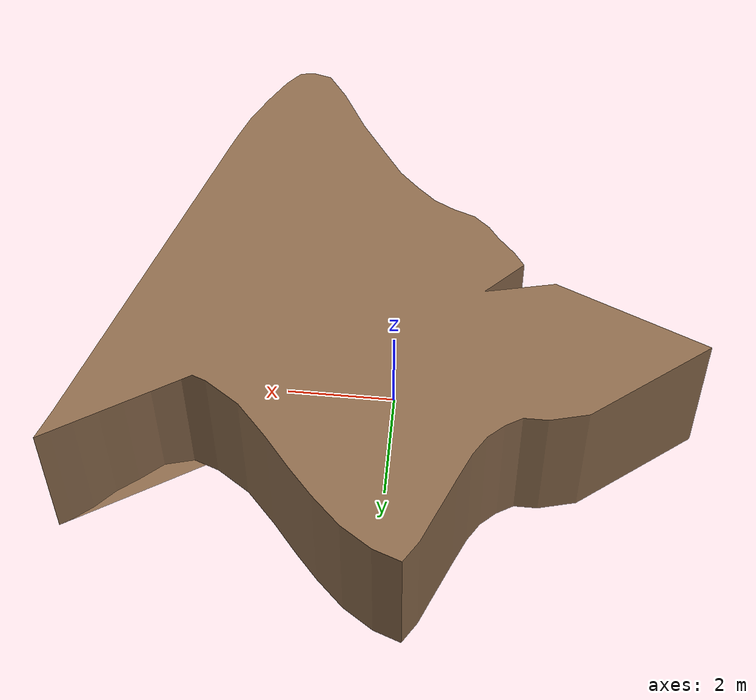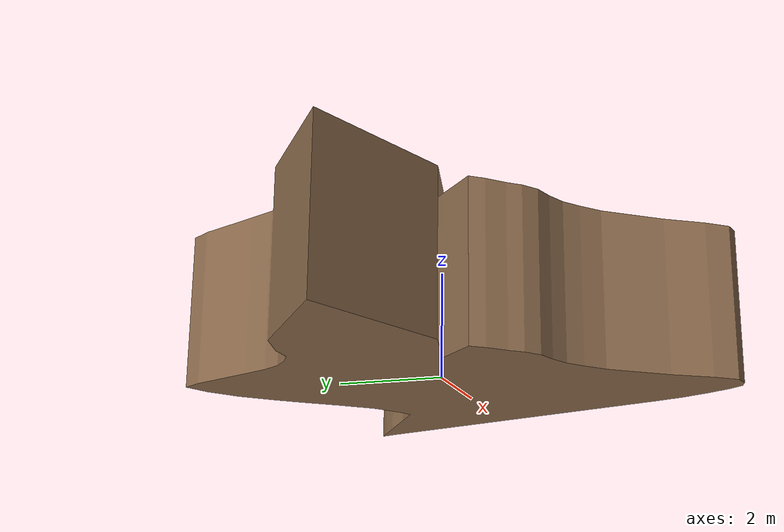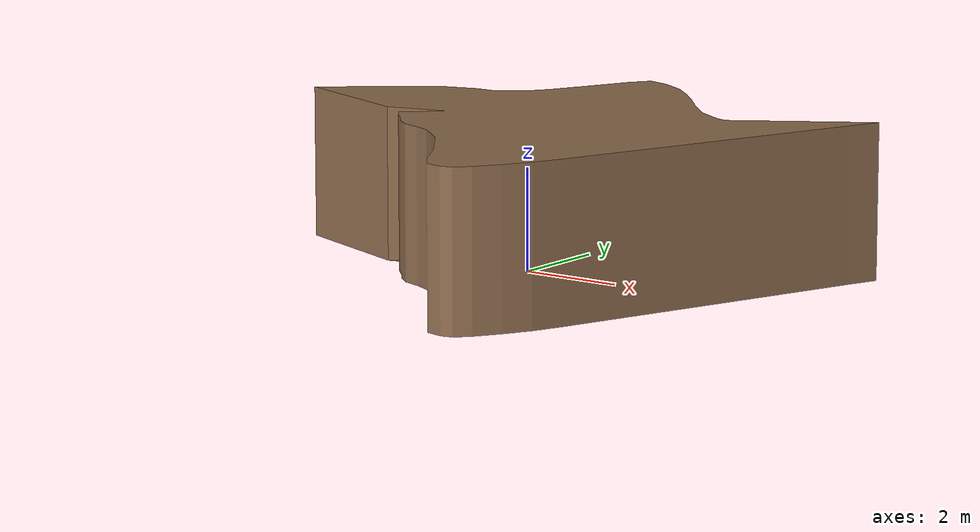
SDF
<?xml version="1.0"?>
<sdf version="1.9">
  <model name="excavation_site" canonical_link="base_link">
    <static>true</static>
    <pose>0 0 0 0 0 0</pose>

    <link name="base_link">
      <!-- Pit mesh: roll 180° so opening faces up; scale 1.5 (between excavator and truck, not overlapping) -->
      <visual name="pit_visual">
        <pose>0 0 0 3.14159 0 0</pose>
        <geometry>
          <mesh>
            <uri>model://excavation_site/meshes/excavation_pit.stl</uri>
            <scale>1.5 1.5 1.5</scale>
          </mesh>
        </geometry>
        <material>
          <ambient>0.45 0.35 0.25 1</ambient>
          <diffuse>0.55 0.42 0.30 1</diffuse>
          <specular>0.1 0.1 0.1 1</specular>
        </material>
      </visual>
    </link>
  </model>
</sdf>
